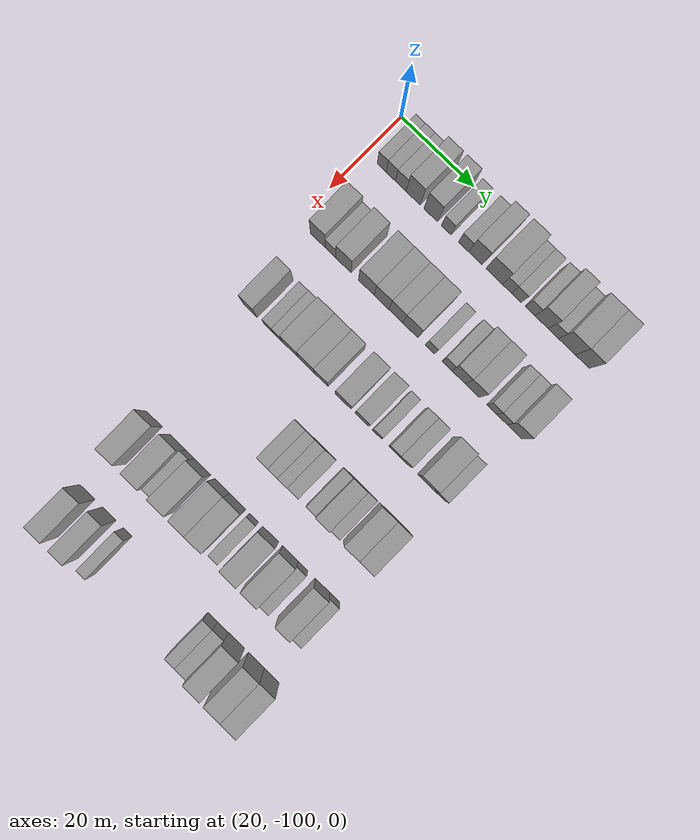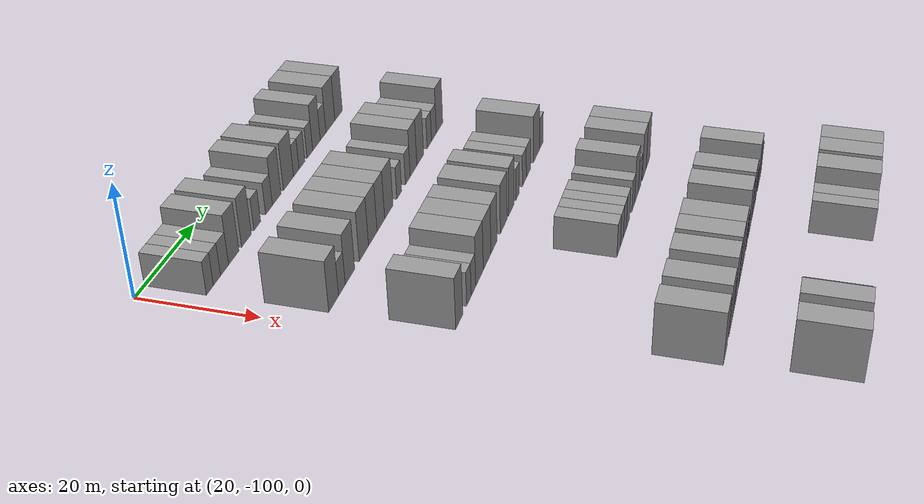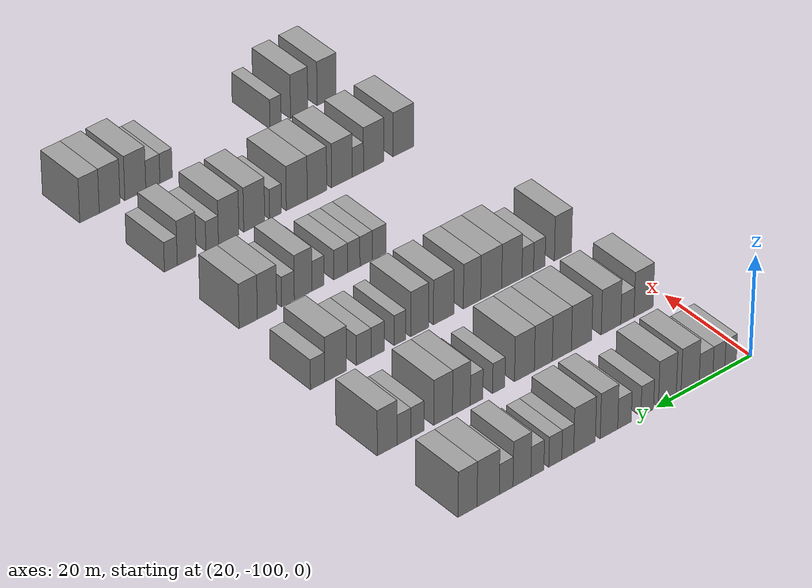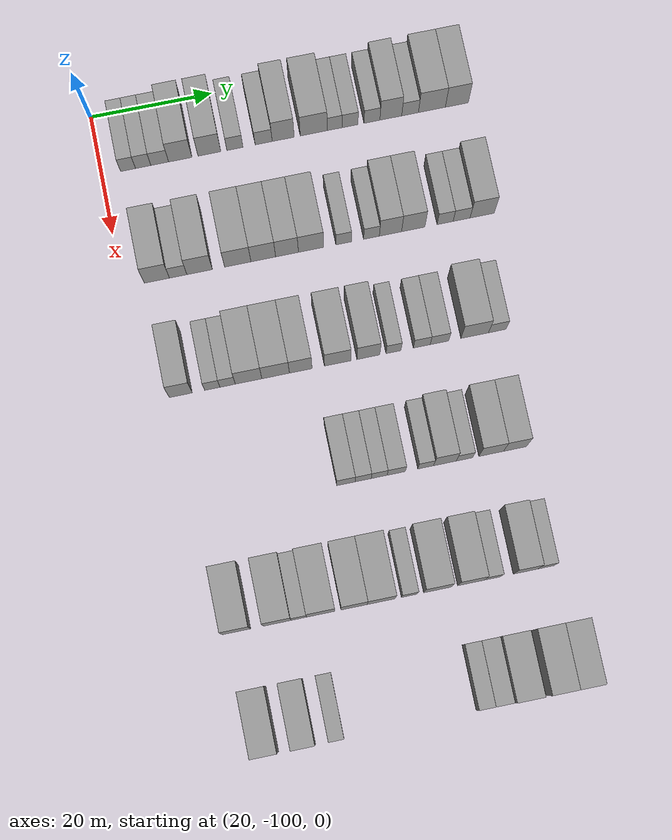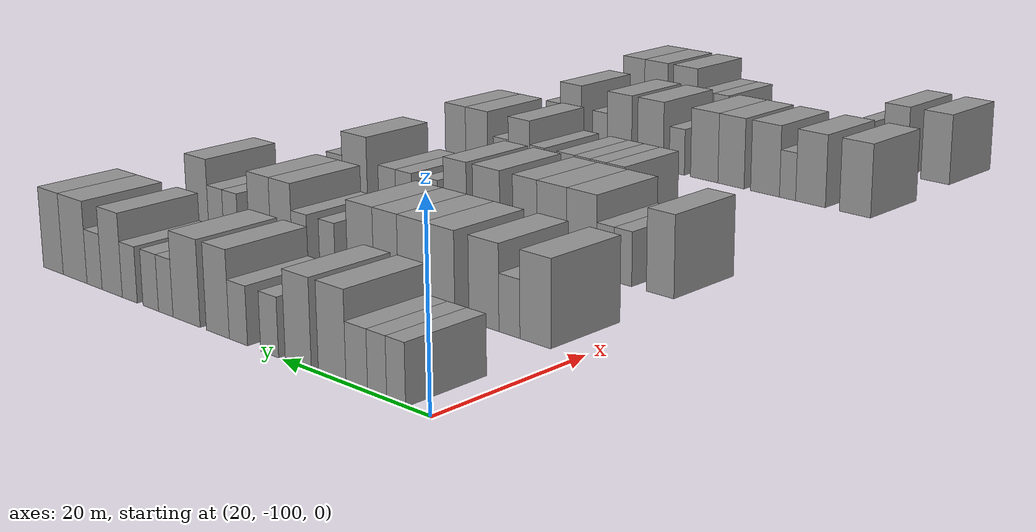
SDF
<sdf version="1.6">
 <world name="default">
  <model name="building_66">
   <static>1</static>
   <pose>25.0000 -95.6244 0 0.000000 0.000000 0.000000</pose>
   <link name="link">
    <pose>0 0 3.00 0 0 0</pose>
    <collision name="collision"><geometry><box><size>10.0000 2.4473 6.0000</size></box></geometry></collision>
    <visual name="visual">
     <cast_shadows>0</cast_shadows>
     <geometry><box><size>10.0000 2.4473 6.0000</size></box></geometry>
     <material>
      <script>
       <uri>model://grey_wall/materials/scripts</uri>
       <uri>model://grey_wall/materials/textures</uri>
       <name>vrc/grey_wall</name>
      </script>
     </material>
    </visual>
   </link>
  </model>
  <model name="building_67">
   <static>1</static>
   <pose>25.0000 -93.1399 0 0.000000 0.000000 0.000000</pose>
   <link name="link">
    <pose>0 0 3.00 0 0 0</pose>
    <collision name="collision"><geometry><box><size>10.0000 2.5217 6.0000</size></box></geometry></collision>
    <visual name="visual">
     <cast_shadows>0</cast_shadows>
     <geometry><box><size>10.0000 2.5217 6.0000</size></box></geometry>
     <material>
      <script>
       <uri>model://grey_wall/materials/scripts</uri>
       <uri>model://grey_wall/materials/textures</uri>
       <name>vrc/grey_wall</name>
      </script>
     </material>
    </visual>
   </link>
  </model>
  <model name="building_68">
   <static>1</static>
   <pose>25.0000 -90.4197 0 0.000000 0.000000 0.000000</pose>
   <link name="link">
    <pose>0 0 3.00 0 0 0</pose>
    <collision name="collision"><geometry><box><size>10.0000 2.9186 6.0000</size></box></geometry></collision>
    <visual name="visual">
     <cast_shadows>0</cast_shadows>
     <geometry><box><size>10.0000 2.9186 6.0000</size></box></geometry>
     <material>
      <script>
       <uri>model://grey_wall/materials/scripts</uri>
       <uri>model://grey_wall/materials/textures</uri>
       <name>vrc/grey_wall</name>
      </script>
     </material>
    </visual>
   </link>
  </model>
  <model name="building_69">
   <static>1</static>
   <pose>25.0000 -87.0418 0 0.000000 0.000000 0.000000</pose>
   <link name="link">
    <pose>0 0 4.50 0 0 0</pose>
    <collision name="collision"><geometry><box><size>10.0000 3.8372 9.0000</size></box></geometry></collision>
    <visual name="visual">
     <cast_shadows>0</cast_shadows>
     <geometry><box><size>10.0000 3.8372 9.0000</size></box></geometry>
     <material>
      <script>
       <uri>model://grey_wall/materials/scripts</uri>
       <uri>model://grey_wall/materials/textures</uri>
       <name>vrc/grey_wall</name>
      </script>
     </material>
    </visual>
   </link>
  </model>
  <model name="building_70">
   <static>1</static>
   <pose>25.0000 -82.2463 0 0.000000 0.000000 0.000000</pose>
   <link name="link">
    <pose>0 0 4.50 0 0 0</pose>
    <collision name="collision"><geometry><box><size>10.0000 3.7538 9.0000</size></box></geometry></collision>
    <visual name="visual">
     <cast_shadows>0</cast_shadows>
     <geometry><box><size>10.0000 3.7538 9.0000</size></box></geometry>
     <material>
      <script>
       <uri>model://grey_wall/materials/scripts</uri>
       <uri>model://grey_wall/materials/textures</uri>
       <name>vrc/grey_wall</name>
      </script>
     </material>
    </visual>
   </link>
  </model>
  <model name="building_71">
   <static>1</static>
   <pose>25.0000 -78.0394 0 0.000000 0.000000 0.000000</pose>
   <link name="link">
    <pose>0 0 3.00 0 0 0</pose>
    <collision name="collision"><geometry><box><size>10.0000 2.6600 6.0000</size></box></geometry></collision>
    <visual name="visual">
     <cast_shadows>0</cast_shadows>
     <geometry><box><size>10.0000 2.6600 6.0000</size></box></geometry>
     <material>
      <script>
       <uri>model://grey_wall/materials/scripts</uri>
       <uri>model://grey_wall/materials/textures</uri>
       <name>vrc/grey_wall</name>
      </script>
     </material>
    </visual>
   </link>
  </model>
  <model name="building_72">
   <static>1</static>
   <pose>25.0000 -73.3021 0 0.000000 0.000000 0.000000</pose>
   <link name="link">
    <pose>0 0 3.00 0 0 0</pose>
    <collision name="collision"><geometry><box><size>10.0000 2.8146 6.0000</size></box></geometry></collision>
    <visual name="visual">
     <cast_shadows>0</cast_shadows>
     <geometry><box><size>10.0000 2.8146 6.0000</size></box></geometry>
     <material>
      <script>
       <uri>model://grey_wall/materials/scripts</uri>
       <uri>model://grey_wall/materials/textures</uri>
       <name>vrc/grey_wall</name>
      </script>
     </material>
    </visual>
   </link>
  </model>
  <model name="building_73">
   <static>1</static>
   <pose>25.0000 -70.0774 0 0.000000 0.000000 0.000000</pose>
   <link name="link">
    <pose>0 0 4.50 0 0 0</pose>
    <collision name="collision"><geometry><box><size>10.0000 3.6347 9.0000</size></box></geometry></collision>
    <visual name="visual">
     <cast_shadows>0</cast_shadows>
     <geometry><box><size>10.0000 3.6347 9.0000</size></box></geometry>
     <material>
      <script>
       <uri>model://grey_wall/materials/scripts</uri>
       <uri>model://grey_wall/materials/textures</uri>
       <name>vrc/grey_wall</name>
      </script>
     </material>
    </visual>
   </link>
  </model>
  <model name="building_74">
   <static>1</static>
   <pose>25.0000 -65.0323 0 0.000000 0.000000 0.000000</pose>
   <link name="link">
    <pose>0 0 4.50 0 0 0</pose>
    <collision name="collision"><geometry><box><size>10.0000 4.4555 9.0000</size></box></geometry></collision>
    <visual name="visual">
     <cast_shadows>0</cast_shadows>
     <geometry><box><size>10.0000 4.4555 9.0000</size></box></geometry>
     <material>
      <script>
       <uri>model://grey_wall/materials/scripts</uri>
       <uri>model://grey_wall/materials/textures</uri>
       <name>vrc/grey_wall</name>
      </script>
     </material>
    </visual>
   </link>
  </model>
  <model name="building_75">
   <static>1</static>
   <pose>25.0000 -61.5827 0 0.000000 0.000000 0.000000</pose>
   <link name="link">
    <pose>0 0 3.00 0 0 0</pose>
    <collision name="collision"><geometry><box><size>10.0000 2.4436 6.0000</size></box></geometry></collision>
    <visual name="visual">
     <cast_shadows>0</cast_shadows>
     <geometry><box><size>10.0000 2.4436 6.0000</size></box></geometry>
     <material>
      <script>
       <uri>model://grey_wall/materials/scripts</uri>
       <uri>model://grey_wall/materials/textures</uri>
       <name>vrc/grey_wall</name>
      </script>
     </material>
    </visual>
   </link>
  </model>
  <model name="building_76">
   <static>1</static>
   <pose>25.0000 -59.0315 0 0.000000 0.000000 0.000000</pose>
   <link name="link">
    <pose>0 0 3.00 0 0 0</pose>
    <collision name="collision"><geometry><box><size>10.0000 2.6588 6.0000</size></box></geometry></collision>
    <visual name="visual">
     <cast_shadows>0</cast_shadows>
     <geometry><box><size>10.0000 2.6588 6.0000</size></box></geometry>
     <material>
      <script>
       <uri>model://grey_wall/materials/scripts</uri>
       <uri>model://grey_wall/materials/textures</uri>
       <name>vrc/grey_wall</name>
      </script>
     </material>
    </visual>
   </link>
  </model>
  <model name="building_77">
   <static>1</static>
   <pose>25.0000 -55.3832 0 0.000000 0.000000 0.000000</pose>
   <link name="link">
    <pose>0 0 3.00 0 0 0</pose>
    <collision name="collision"><geometry><box><size>10.0000 2.6379 6.0000</size></box></geometry></collision>
    <visual name="visual">
     <cast_shadows>0</cast_shadows>
     <geometry><box><size>10.0000 2.6379 6.0000</size></box></geometry>
     <material>
      <script>
       <uri>model://grey_wall/materials/scripts</uri>
       <uri>model://grey_wall/materials/textures</uri>
       <name>vrc/grey_wall</name>
      </script>
     </material>
    </visual>
   </link>
  </model>
  <model name="building_78">
   <static>1</static>
   <pose>25.0000 -52.2498 0 0.000000 0.000000 0.000000</pose>
   <link name="link">
    <pose>0 0 4.50 0 0 0</pose>
    <collision name="collision"><geometry><box><size>10.0000 3.6288 9.0000</size></box></geometry></collision>
    <visual name="visual">
     <cast_shadows>0</cast_shadows>
     <geometry><box><size>10.0000 3.6288 9.0000</size></box></geometry>
     <material>
      <script>
       <uri>model://grey_wall/materials/scripts</uri>
       <uri>model://grey_wall/materials/textures</uri>
       <name>vrc/grey_wall</name>
      </script>
     </material>
    </visual>
   </link>
  </model>
  <model name="building_79">
   <static>1</static>
   <pose>25.0000 -49.0519 0 0.000000 0.000000 0.000000</pose>
   <link name="link">
    <pose>0 0 3.00 0 0 0</pose>
    <collision name="collision"><geometry><box><size>10.0000 2.7669 6.0000</size></box></geometry></collision>
    <visual name="visual">
     <cast_shadows>0</cast_shadows>
     <geometry><box><size>10.0000 2.7669 6.0000</size></box></geometry>
     <material>
      <script>
       <uri>model://grey_wall/materials/scripts</uri>
       <uri>model://grey_wall/materials/textures</uri>
       <name>vrc/grey_wall</name>
      </script>
     </material>
    </visual>
   </link>
  </model>
  <model name="building_80">
   <static>1</static>
   <pose>25.0000 -45.4250 0 0.000000 0.000000 0.000000</pose>
   <link name="link">
    <pose>0 0 4.50 0 0 0</pose>
    <collision name="collision"><geometry><box><size>10.0000 4.4869 9.0000</size></box></geometry></collision>
    <visual name="visual">
     <cast_shadows>0</cast_shadows>
     <geometry><box><size>10.0000 4.4869 9.0000</size></box></geometry>
     <material>
      <script>
       <uri>model://grey_wall/materials/scripts</uri>
       <uri>model://grey_wall/materials/textures</uri>
       <name>vrc/grey_wall</name>
      </script>
     </material>
    </visual>
   </link>
  </model>
  <model name="building_81">
   <static>1</static>
   <pose>25.0000 -41.2766 0 0.000000 0.000000 0.000000</pose>
   <link name="link">
    <pose>0 0 4.50 0 0 0</pose>
    <collision name="collision"><geometry><box><size>10.0000 3.8098 9.0000</size></box></geometry></collision>
    <visual name="visual">
     <cast_shadows>0</cast_shadows>
     <geometry><box><size>10.0000 3.8098 9.0000</size></box></geometry>
     <material>
      <script>
       <uri>model://grey_wall/materials/scripts</uri>
       <uri>model://grey_wall/materials/textures</uri>
       <name>vrc/grey_wall</name>
      </script>
     </material>
    </visual>
   </link>
  </model>
  <model name="building_230">
   <static>1</static>
   <pose>44.0000 -94.4397 0 0.000000 0.000000 0.000000</pose>
   <link name="link">
    <pose>0 0 4.50 0 0 0</pose>
    <collision name="collision"><geometry><box><size>10.0000 4.0801 9.0000</size></box></geometry></collision>
    <visual name="visual">
     <cast_shadows>0</cast_shadows>
     <geometry><box><size>10.0000 4.0801 9.0000</size></box></geometry>
     <material>
      <script>
       <uri>model://grey_wall/materials/scripts</uri>
       <uri>model://grey_wall/materials/textures</uri>
       <name>vrc/grey_wall</name>
      </script>
     </material>
    </visual>
   </link>
  </model>
  <model name="building_231">
   <static>1</static>
   <pose>44.0000 -90.9858 0 0.000000 0.000000 0.000000</pose>
   <link name="link">
    <pose>0 0 3.00 0 0 0</pose>
    <collision name="collision"><geometry><box><size>10.0000 2.8278 6.0000</size></box></geometry></collision>
    <visual name="visual">
     <cast_shadows>0</cast_shadows>
     <geometry><box><size>10.0000 2.8278 6.0000</size></box></geometry>
     <material>
      <script>
       <uri>model://grey_wall/materials/scripts</uri>
       <uri>model://grey_wall/materials/textures</uri>
       <name>vrc/grey_wall</name>
      </script>
     </material>
    </visual>
   </link>
  </model>
  <model name="building_232">
   <static>1</static>
   <pose>44.0000 -87.4988 0 0.000000 0.000000 0.000000</pose>
   <link name="link">
    <pose>0 0 4.50 0 0 0</pose>
    <collision name="collision"><geometry><box><size>10.0000 4.1462 9.0000</size></box></geometry></collision>
    <visual name="visual">
     <cast_shadows>0</cast_shadows>
     <geometry><box><size>10.0000 4.1462 9.0000</size></box></geometry>
     <material>
      <script>
       <uri>model://grey_wall/materials/scripts</uri>
       <uri>model://grey_wall/materials/textures</uri>
       <name>vrc/grey_wall</name>
      </script>
     </material>
    </visual>
   </link>
  </model>
  <model name="building_233">
   <static>1</static>
   <pose>44.0000 -81.2805 0 0.000000 0.000000 0.000000</pose>
   <link name="link">
    <pose>0 0 4.50 0 0 0</pose>
    <collision name="collision"><geometry><box><size>10.0000 4.2903 9.0000</size></box></geometry></collision>
    <visual name="visual">
     <cast_shadows>0</cast_shadows>
     <geometry><box><size>10.0000 4.2903 9.0000</size></box></geometry>
     <material>
      <script>
       <uri>model://grey_wall/materials/scripts</uri>
       <uri>model://grey_wall/materials/textures</uri>
       <name>vrc/grey_wall</name>
      </script>
     </material>
    </visual>
   </link>
  </model>
  <model name="building_234">
   <static>1</static>
   <pose>44.0000 -77.1309 0 0.000000 0.000000 0.000000</pose>
   <link name="link">
    <pose>0 0 4.50 0 0 0</pose>
    <collision name="collision"><geometry><box><size>10.0000 4.0091 9.0000</size></box></geometry></collision>
    <visual name="visual">
     <cast_shadows>0</cast_shadows>
     <geometry><box><size>10.0000 4.0091 9.0000</size></box></geometry>
     <material>
      <script>
       <uri>model://grey_wall/materials/scripts</uri>
       <uri>model://grey_wall/materials/textures</uri>
       <name>vrc/grey_wall</name>
      </script>
     </material>
    </visual>
   </link>
  </model>
  <model name="building_235">
   <static>1</static>
   <pose>44.0000 -73.2643 0 0.000000 0.000000 0.000000</pose>
   <link name="link">
    <pose>0 0 4.50 0 0 0</pose>
    <collision name="collision"><geometry><box><size>10.0000 3.7241 9.0000</size></box></geometry></collision>
    <visual name="visual">
     <cast_shadows>0</cast_shadows>
     <geometry><box><size>10.0000 3.7241 9.0000</size></box></geometry>
     <material>
      <script>
       <uri>model://grey_wall/materials/scripts</uri>
       <uri>model://grey_wall/materials/textures</uri>
       <name>vrc/grey_wall</name>
      </script>
     </material>
    </visual>
   </link>
  </model>
  <model name="building_236">
   <static>1</static>
   <pose>44.0000 -69.3434 0 0.000000 0.000000 0.000000</pose>
   <link name="link">
    <pose>0 0 4.50 0 0 0</pose>
    <collision name="collision"><geometry><box><size>10.0000 4.1177 9.0000</size></box></geometry></collision>
    <visual name="visual">
     <cast_shadows>0</cast_shadows>
     <geometry><box><size>10.0000 4.1177 9.0000</size></box></geometry>
     <material>
      <script>
       <uri>model://grey_wall/materials/scripts</uri>
       <uri>model://grey_wall/materials/textures</uri>
       <name>vrc/grey_wall</name>
      </script>
     </material>
    </visual>
   </link>
  </model>
  <model name="building_237">
   <static>1</static>
   <pose>44.0000 -64.0171 0 0.000000 0.000000 0.000000</pose>
   <link name="link">
    <pose>0 0 3.00 0 0 0</pose>
    <collision name="collision"><geometry><box><size>10.0000 2.5350 6.0000</size></box></geometry></collision>
    <visual name="visual">
     <cast_shadows>0</cast_shadows>
     <geometry><box><size>10.0000 2.5350 6.0000</size></box></geometry>
     <material>
      <script>
       <uri>model://grey_wall/materials/scripts</uri>
       <uri>model://grey_wall/materials/textures</uri>
       <name>vrc/grey_wall</name>
      </script>
     </material>
    </visual>
   </link>
  </model>
  <model name="building_238">
   <static>1</static>
   <pose>44.0000 -59.4573 0 0.000000 0.000000 0.000000</pose>
   <link name="link">
    <pose>0 0 3.00 0 0 0</pose>
    <collision name="collision"><geometry><box><size>10.0000 2.5846 6.0000</size></box></geometry></collision>
    <visual name="visual">
     <cast_shadows>0</cast_shadows>
     <geometry><box><size>10.0000 2.5846 6.0000</size></box></geometry>
     <material>
      <script>
       <uri>model://grey_wall/materials/scripts</uri>
       <uri>model://grey_wall/materials/textures</uri>
       <name>vrc/grey_wall</name>
      </script>
     </material>
    </visual>
   </link>
  </model>
  <model name="building_239">
   <static>1</static>
   <pose>44.0000 -56.3441 0 0.000000 0.000000 0.000000</pose>
   <link name="link">
    <pose>0 0 4.50 0 0 0</pose>
    <collision name="collision"><geometry><box><size>10.0000 3.6419 9.0000</size></box></geometry></collision>
    <visual name="visual">
     <cast_shadows>0</cast_shadows>
     <geometry><box><size>10.0000 3.6419 9.0000</size></box></geometry>
     <material>
      <script>
       <uri>model://grey_wall/materials/scripts</uri>
       <uri>model://grey_wall/materials/textures</uri>
       <name>vrc/grey_wall</name>
      </script>
     </material>
    </visual>
   </link>
  </model>
  <model name="building_240">
   <static>1</static>
   <pose>44.0000 -52.6106 0 0.000000 0.000000 0.000000</pose>
   <link name="link">
    <pose>0 0 4.50 0 0 0</pose>
    <collision name="collision"><geometry><box><size>10.0000 3.8251 9.0000</size></box></geometry></collision>
    <visual name="visual">
     <cast_shadows>0</cast_shadows>
     <geometry><box><size>10.0000 3.8251 9.0000</size></box></geometry>
     <material>
      <script>
       <uri>model://grey_wall/materials/scripts</uri>
       <uri>model://grey_wall/materials/textures</uri>
       <name>vrc/grey_wall</name>
      </script>
     </material>
    </visual>
   </link>
  </model>
  <model name="building_241">
   <static>1</static>
   <pose>44.0000 -47.3762 0 0.000000 0.000000 0.000000</pose>
   <link name="link">
    <pose>0 0 3.00 0 0 0</pose>
    <collision name="collision"><geometry><box><size>10.0000 2.6438 6.0000</size></box></geometry></collision>
    <visual name="visual">
     <cast_shadows>0</cast_shadows>
     <geometry><box><size>10.0000 2.6438 6.0000</size></box></geometry>
     <material>
      <script>
       <uri>model://grey_wall/materials/scripts</uri>
       <uri>model://grey_wall/materials/textures</uri>
       <name>vrc/grey_wall</name>
      </script>
     </material>
    </visual>
   </link>
  </model>
  <model name="building_242">
   <static>1</static>
   <pose>44.0000 -44.6667 0 0.000000 0.000000 0.000000</pose>
   <link name="link">
    <pose>0 0 3.00 0 0 0</pose>
    <collision name="collision"><geometry><box><size>10.0000 2.7752 6.0000</size></box></geometry></collision>
    <visual name="visual">
     <cast_shadows>0</cast_shadows>
     <geometry><box><size>10.0000 2.7752 6.0000</size></box></geometry>
     <material>
      <script>
       <uri>model://grey_wall/materials/scripts</uri>
       <uri>model://grey_wall/materials/textures</uri>
       <name>vrc/grey_wall</name>
      </script>
     </material>
    </visual>
   </link>
  </model>
  <model name="building_243">
   <static>1</static>
   <pose>44.0000 -41.2909 0 0.000000 0.000000 0.000000</pose>
   <link name="link">
    <pose>0 0 4.50 0 0 0</pose>
    <collision name="collision"><geometry><box><size>10.0000 3.9764 9.0000</size></box></geometry></collision>
    <visual name="visual">
     <cast_shadows>0</cast_shadows>
     <geometry><box><size>10.0000 3.9764 9.0000</size></box></geometry>
     <material>
      <script>
       <uri>model://grey_wall/materials/scripts</uri>
       <uri>model://grey_wall/materials/textures</uri>
       <name>vrc/grey_wall</name>
      </script>
     </material>
    </visual>
   </link>
  </model>
  <model name="building_413">
   <static>1</static>
   <pose>63.0000 -94.1561 0 0.000000 0.000000 0.000000</pose>
   <link name="link">
    <pose>0 0 4.50 0 0 0</pose>
    <collision name="collision"><geometry><box><size>10.0000 3.6726 9.0000</size></box></geometry></collision>
    <visual name="visual">
     <cast_shadows>0</cast_shadows>
     <geometry><box><size>10.0000 3.6726 9.0000</size></box></geometry>
     <material>
      <script>
       <uri>model://grey_wall/materials/scripts</uri>
       <uri>model://grey_wall/materials/textures</uri>
       <name>vrc/grey_wall</name>
      </script>
     </material>
    </visual>
   </link>
  </model>
  <model name="building_414">
   <static>1</static>
   <pose>63.0000 -89.0990 0 0.000000 0.000000 0.000000</pose>
   <link name="link">
    <pose>0 0 3.00 0 0 0</pose>
    <collision name="collision"><geometry><box><size>10.0000 2.4415 6.0000</size></box></geometry></collision>
    <visual name="visual">
     <cast_shadows>0</cast_shadows>
     <geometry><box><size>10.0000 2.4415 6.0000</size></box></geometry>
     <material>
      <script>
       <uri>model://grey_wall/materials/scripts</uri>
       <uri>model://grey_wall/materials/textures</uri>
       <name>vrc/grey_wall</name>
      </script>
     </material>
    </visual>
   </link>
  </model>
  <model name="building_415">
   <static>1</static>
   <pose>63.0000 -86.6405 0 0.000000 0.000000 0.000000</pose>
   <link name="link">
    <pose>0 0 3.00 0 0 0</pose>
    <collision name="collision"><geometry><box><size>10.0000 2.4756 6.0000</size></box></geometry></collision>
    <visual name="visual">
     <cast_shadows>0</cast_shadows>
     <geometry><box><size>10.0000 2.4756 6.0000</size></box></geometry>
     <material>
      <script>
       <uri>model://grey_wall/materials/scripts</uri>
       <uri>model://grey_wall/materials/textures</uri>
       <name>vrc/grey_wall</name>
      </script>
     </material>
    </visual>
   </link>
  </model>
  <model name="building_416">
   <static>1</static>
   <pose>63.0000 -83.2626 0 0.000000 0.000000 0.000000</pose>
   <link name="link">
    <pose>0 0 4.50 0 0 0</pose>
    <collision name="collision"><geometry><box><size>10.0000 4.2802 9.0000</size></box></geometry></collision>
    <visual name="visual">
     <cast_shadows>0</cast_shadows>
     <geometry><box><size>10.0000 4.2802 9.0000</size></box></geometry>
     <material>
      <script>
       <uri>model://grey_wall/materials/scripts</uri>
       <uri>model://grey_wall/materials/textures</uri>
       <name>vrc/grey_wall</name>
      </script>
     </material>
    </visual>
   </link>
  </model>
  <model name="building_417">
   <static>1</static>
   <pose>63.0000 -78.9058 0 0.000000 0.000000 0.000000</pose>
   <link name="link">
    <pose>0 0 4.50 0 0 0</pose>
    <collision name="collision"><geometry><box><size>10.0000 4.4334 9.0000</size></box></geometry></collision>
    <visual name="visual">
     <cast_shadows>0</cast_shadows>
     <geometry><box><size>10.0000 4.4334 9.0000</size></box></geometry>
     <material>
      <script>
       <uri>model://grey_wall/materials/scripts</uri>
       <uri>model://grey_wall/materials/textures</uri>
       <name>vrc/grey_wall</name>
      </script>
     </material>
    </visual>
   </link>
  </model>
  <model name="building_418">
   <static>1</static>
   <pose>63.0000 -74.8684 0 0.000000 0.000000 0.000000</pose>
   <link name="link">
    <pose>0 0 4.50 0 0 0</pose>
    <collision name="collision"><geometry><box><size>10.0000 3.6415 9.0000</size></box></geometry></collision>
    <visual name="visual">
     <cast_shadows>0</cast_shadows>
     <geometry><box><size>10.0000 3.6415 9.0000</size></box></geometry>
     <material>
      <script>
       <uri>model://grey_wall/materials/scripts</uri>
       <uri>model://grey_wall/materials/textures</uri>
       <name>vrc/grey_wall</name>
      </script>
     </material>
    </visual>
   </link>
  </model>
  <model name="building_419">
   <static>1</static>
   <pose>63.0000 -68.9253 0 0.000000 0.000000 0.000000</pose>
   <link name="link">
    <pose>0 0 4.50 0 0 0</pose>
    <collision name="collision"><geometry><box><size>10.0000 4.2446 9.0000</size></box></geometry></collision>
    <visual name="visual">
     <cast_shadows>0</cast_shadows>
     <geometry><box><size>10.0000 4.2446 9.0000</size></box></geometry>
     <material>
      <script>
       <uri>model://grey_wall/materials/scripts</uri>
       <uri>model://grey_wall/materials/textures</uri>
       <name>vrc/grey_wall</name>
      </script>
     </material>
    </visual>
   </link>
  </model>
  <model name="building_420">
   <static>1</static>
   <pose>63.0000 -63.9522 0 0.000000 0.000000 0.000000</pose>
   <link name="link">
    <pose>0 0 4.50 0 0 0</pose>
    <collision name="collision"><geometry><box><size>10.0000 3.7017 9.0000</size></box></geometry></collision>
    <visual name="visual">
     <cast_shadows>0</cast_shadows>
     <geometry><box><size>10.0000 3.7017 9.0000</size></box></geometry>
     <material>
      <script>
       <uri>model://grey_wall/materials/scripts</uri>
       <uri>model://grey_wall/materials/textures</uri>
       <name>vrc/grey_wall</name>
      </script>
     </material>
    </visual>
   </link>
  </model>
  <model name="building_421">
   <static>1</static>
   <pose>63.0000 -59.8925 0 0.000000 0.000000 0.000000</pose>
   <link name="link">
    <pose>0 0 3.00 0 0 0</pose>
    <collision name="collision"><geometry><box><size>10.0000 2.4177 6.0000</size></box></geometry></collision>
    <visual name="visual">
     <cast_shadows>0</cast_shadows>
     <geometry><box><size>10.0000 2.4177 6.0000</size></box></geometry>
     <material>
      <script>
       <uri>model://grey_wall/materials/scripts</uri>
       <uri>model://grey_wall/materials/textures</uri>
       <name>vrc/grey_wall</name>
      </script>
     </material>
    </visual>
   </link>
  </model>
  <model name="building_422">
   <static>1</static>
   <pose>63.0000 -55.3165 0 0.000000 0.000000 0.000000</pose>
   <link name="link">
    <pose>0 0 3.00 0 0 0</pose>
    <collision name="collision"><geometry><box><size>10.0000 2.7343 6.0000</size></box></geometry></collision>
    <visual name="visual">
     <cast_shadows>0</cast_shadows>
     <geometry><box><size>10.0000 2.7343 6.0000</size></box></geometry>
     <material>
      <script>
       <uri>model://grey_wall/materials/scripts</uri>
       <uri>model://grey_wall/materials/textures</uri>
       <name>vrc/grey_wall</name>
      </script>
     </material>
    </visual>
   </link>
  </model>
  <model name="building_423">
   <static>1</static>
   <pose>63.0000 -52.4522 0 0.000000 0.000000 0.000000</pose>
   <link name="link">
    <pose>0 0 3.00 0 0 0</pose>
    <collision name="collision"><geometry><box><size>10.0000 2.9945 6.0000</size></box></geometry></collision>
    <visual name="visual">
     <cast_shadows>0</cast_shadows>
     <geometry><box><size>10.0000 2.9945 6.0000</size></box></geometry>
     <material>
      <script>
       <uri>model://grey_wall/materials/scripts</uri>
       <uri>model://grey_wall/materials/textures</uri>
       <name>vrc/grey_wall</name>
      </script>
     </material>
    </visual>
   </link>
  </model>
  <model name="building_424">
   <static>1</static>
   <pose>63.0000 -46.7178 0 0.000000 0.000000 0.000000</pose>
   <link name="link">
    <pose>0 0 4.50 0 0 0</pose>
    <collision name="collision"><geometry><box><size>10.0000 4.4743 9.0000</size></box></geometry></collision>
    <visual name="visual">
     <cast_shadows>0</cast_shadows>
     <geometry><box><size>10.0000 4.4743 9.0000</size></box></geometry>
     <material>
      <script>
       <uri>model://grey_wall/materials/scripts</uri>
       <uri>model://grey_wall/materials/textures</uri>
       <name>vrc/grey_wall</name>
      </script>
     </material>
    </visual>
   </link>
  </model>
  <model name="building_425">
   <static>1</static>
   <pose>63.0000 -43.0467 0 0.000000 0.000000 0.000000</pose>
   <link name="link">
    <pose>0 0 3.00 0 0 0</pose>
    <collision name="collision"><geometry><box><size>10.0000 2.8677 6.0000</size></box></geometry></collision>
    <visual name="visual">
     <cast_shadows>0</cast_shadows>
     <geometry><box><size>10.0000 2.8677 6.0000</size></box></geometry>
     <material>
      <script>
       <uri>model://grey_wall/materials/scripts</uri>
       <uri>model://grey_wall/materials/textures</uri>
       <name>vrc/grey_wall</name>
      </script>
     </material>
    </visual>
   </link>
  </model>
  <model name="building_573">
   <static>1</static>
   <pose>82.0000 -71.5166 0 0.000000 0.000000 0.000000</pose>
   <link name="link">
    <pose>0 0 3.00 0 0 0</pose>
    <collision name="collision"><geometry><box><size>10.0000 2.9342 6.0000</size></box></geometry></collision>
    <visual name="visual">
     <cast_shadows>0</cast_shadows>
     <geometry><box><size>10.0000 2.9342 6.0000</size></box></geometry>
     <material>
      <script>
       <uri>model://grey_wall/materials/scripts</uri>
       <uri>model://grey_wall/materials/textures</uri>
       <name>vrc/grey_wall</name>
      </script>
     </material>
    </visual>
   </link>
  </model>
  <model name="building_574">
   <static>1</static>
   <pose>82.0000 -68.7672 0 0.000000 0.000000 0.000000</pose>
   <link name="link">
    <pose>0 0 3.00 0 0 0</pose>
    <collision name="collision"><geometry><box><size>10.0000 2.5647 6.0000</size></box></geometry></collision>
    <visual name="visual">
     <cast_shadows>0</cast_shadows>
     <geometry><box><size>10.0000 2.5647 6.0000</size></box></geometry>
     <material>
      <script>
       <uri>model://grey_wall/materials/scripts</uri>
       <uri>model://grey_wall/materials/textures</uri>
       <name>vrc/grey_wall</name>
      </script>
     </material>
    </visual>
   </link>
  </model>
  <model name="building_575">
   <static>1</static>
   <pose>82.0000 -66.2163 0 0.000000 0.000000 0.000000</pose>
   <link name="link">
    <pose>0 0 3.00 0 0 0</pose>
    <collision name="collision"><geometry><box><size>10.0000 2.5372 6.0000</size></box></geometry></collision>
    <visual name="visual">
     <cast_shadows>0</cast_shadows>
     <geometry><box><size>10.0000 2.5372 6.0000</size></box></geometry>
     <material>
      <script>
       <uri>model://grey_wall/materials/scripts</uri>
       <uri>model://grey_wall/materials/textures</uri>
       <name>vrc/grey_wall</name>
      </script>
     </material>
    </visual>
   </link>
  </model>
  <model name="building_576">
   <static>1</static>
   <pose>82.0000 -63.4958 0 0.000000 0.000000 0.000000</pose>
   <link name="link">
    <pose>0 0 3.00 0 0 0</pose>
    <collision name="collision"><geometry><box><size>10.0000 2.9037 6.0000</size></box></geometry></collision>
    <visual name="visual">
     <cast_shadows>0</cast_shadows>
     <geometry><box><size>10.0000 2.9037 6.0000</size></box></geometry>
     <material>
      <script>
       <uri>model://grey_wall/materials/scripts</uri>
       <uri>model://grey_wall/materials/textures</uri>
       <name>vrc/grey_wall</name>
      </script>
     </material>
    </visual>
   </link>
  </model>
  <model name="building_577">
   <static>1</static>
   <pose>82.0000 -58.7861 0 0.000000 0.000000 0.000000</pose>
   <link name="link">
    <pose>0 0 3.00 0 0 0</pose>
    <collision name="collision"><geometry><box><size>10.0000 2.5158 6.0000</size></box></geometry></collision>
    <visual name="visual">
     <cast_shadows>0</cast_shadows>
     <geometry><box><size>10.0000 2.5158 6.0000</size></box></geometry>
     <material>
      <script>
       <uri>model://grey_wall/materials/scripts</uri>
       <uri>model://grey_wall/materials/textures</uri>
       <name>vrc/grey_wall</name>
      </script>
     </material>
    </visual>
   </link>
  </model>
  <model name="building_578">
   <static>1</static>
   <pose>82.0000 -55.7071 0 0.000000 0.000000 0.000000</pose>
   <link name="link">
    <pose>0 0 4.50 0 0 0</pose>
    <collision name="collision"><geometry><box><size>10.0000 3.6423 9.0000</size></box></geometry></collision>
    <visual name="visual">
     <cast_shadows>0</cast_shadows>
     <geometry><box><size>10.0000 3.6423 9.0000</size></box></geometry>
     <material>
      <script>
       <uri>model://grey_wall/materials/scripts</uri>
       <uri>model://grey_wall/materials/textures</uri>
       <name>vrc/grey_wall</name>
      </script>
     </material>
    </visual>
   </link>
  </model>
  <model name="building_579">
   <static>1</static>
   <pose>82.0000 -52.5766 0 0.000000 0.000000 0.000000</pose>
   <link name="link">
    <pose>0 0 3.00 0 0 0</pose>
    <collision name="collision"><geometry><box><size>10.0000 2.6185 6.0000</size></box></geometry></collision>
    <visual name="visual">
     <cast_shadows>0</cast_shadows>
     <geometry><box><size>10.0000 2.6185 6.0000</size></box></geometry>
     <material>
      <script>
       <uri>model://grey_wall/materials/scripts</uri>
       <uri>model://grey_wall/materials/textures</uri>
       <name>vrc/grey_wall</name>
      </script>
     </material>
    </visual>
   </link>
  </model>
  <model name="building_580">
   <static>1</static>
   <pose>82.0000 -48.2945 0 0.000000 0.000000 0.000000</pose>
   <link name="link">
    <pose>0 0 4.50 0 0 0</pose>
    <collision name="collision"><geometry><box><size>10.0000 3.9458 9.0000</size></box></geometry></collision>
    <visual name="visual">
     <cast_shadows>0</cast_shadows>
     <geometry><box><size>10.0000 3.9458 9.0000</size></box></geometry>
     <material>
      <script>
       <uri>model://grey_wall/materials/scripts</uri>
       <uri>model://grey_wall/materials/textures</uri>
       <name>vrc/grey_wall</name>
      </script>
     </material>
    </visual>
   </link>
  </model>
  <model name="building_581">
   <static>1</static>
   <pose>82.0000 -44.4660 0 0.000000 0.000000 0.000000</pose>
   <link name="link">
    <pose>0 0 4.50 0 0 0</pose>
    <collision name="collision"><geometry><box><size>10.0000 3.7112 9.0000</size></box></geometry></collision>
    <visual name="visual">
     <cast_shadows>0</cast_shadows>
     <geometry><box><size>10.0000 3.7112 9.0000</size></box></geometry>
     <material>
      <script>
       <uri>model://grey_wall/materials/scripts</uri>
       <uri>model://grey_wall/materials/textures</uri>
       <name>vrc/grey_wall</name>
      </script>
     </material>
    </visual>
   </link>
  </model>
  <model name="building_725">
   <static>1</static>
   <pose>101.0000 -92.6124 0 0.000000 0.000000 0.000000</pose>
   <link name="link">
    <pose>0 0 4.50 0 0 0</pose>
    <collision name="collision"><geometry><box><size>10.0000 4.3998 9.0000</size></box></geometry></collision>
    <visual name="visual">
     <cast_shadows>0</cast_shadows>
     <geometry><box><size>10.0000 4.3998 9.0000</size></box></geometry>
     <material>
      <script>
       <uri>model://grey_wall/materials/scripts</uri>
       <uri>model://grey_wall/materials/textures</uri>
       <name>vrc/grey_wall</name>
      </script>
     </material>
    </visual>
   </link>
  </model>
  <model name="building_726">
   <static>1</static>
   <pose>101.0000 -86.2340 0 0.000000 0.000000 0.000000</pose>
   <link name="link">
    <pose>0 0 4.50 0 0 0</pose>
    <collision name="collision"><geometry><box><size>10.0000 4.3569 9.0000</size></box></geometry></collision>
    <visual name="visual">
     <cast_shadows>0</cast_shadows>
     <geometry><box><size>10.0000 4.3569 9.0000</size></box></geometry>
     <material>
      <script>
       <uri>model://grey_wall/materials/scripts</uri>
       <uri>model://grey_wall/materials/textures</uri>
       <name>vrc/grey_wall</name>
      </script>
     </material>
    </visual>
   </link>
  </model>
  <model name="building_727">
   <static>1</static>
   <pose>101.0000 -82.8504 0 0.000000 0.000000 0.000000</pose>
   <link name="link">
    <pose>0 0 3.00 0 0 0</pose>
    <collision name="collision"><geometry><box><size>10.0000 2.4102 6.0000</size></box></geometry></collision>
    <visual name="visual">
     <cast_shadows>0</cast_shadows>
     <geometry><box><size>10.0000 2.4102 6.0000</size></box></geometry>
     <material>
      <script>
       <uri>model://grey_wall/materials/scripts</uri>
       <uri>model://grey_wall/materials/textures</uri>
       <name>vrc/grey_wall</name>
      </script>
     </material>
    </visual>
   </link>
  </model>
  <model name="building_728">
   <static>1</static>
   <pose>101.0000 -79.4442 0 0.000000 0.000000 0.000000</pose>
   <link name="link">
    <pose>0 0 4.50 0 0 0</pose>
    <collision name="collision"><geometry><box><size>10.0000 4.4023 9.0000</size></box></geometry></collision>
    <visual name="visual">
     <cast_shadows>0</cast_shadows>
     <geometry><box><size>10.0000 4.4023 9.0000</size></box></geometry>
     <material>
      <script>
       <uri>model://grey_wall/materials/scripts</uri>
       <uri>model://grey_wall/materials/textures</uri>
       <name>vrc/grey_wall</name>
      </script>
     </material>
    </visual>
   </link>
  </model>
  <model name="building_729">
   <static>1</static>
   <pose>101.0000 -74.1869 0 0.000000 0.000000 0.000000</pose>
   <link name="link">
    <pose>0 0 4.50 0 0 0</pose>
    <collision name="collision"><geometry><box><size>10.0000 4.1122 9.0000</size></box></geometry></collision>
    <visual name="visual">
     <cast_shadows>0</cast_shadows>
     <geometry><box><size>10.0000 4.1122 9.0000</size></box></geometry>
     <material>
      <script>
       <uri>model://grey_wall/materials/scripts</uri>
       <uri>model://grey_wall/materials/textures</uri>
       <name>vrc/grey_wall</name>
      </script>
     </material>
    </visual>
   </link>
  </model>
  <model name="building_730">
   <static>1</static>
   <pose>101.0000 -69.9293 0 0.000000 0.000000 0.000000</pose>
   <link name="link">
    <pose>0 0 4.50 0 0 0</pose>
    <collision name="collision"><geometry><box><size>10.0000 4.4031 9.0000</size></box></geometry></collision>
    <visual name="visual">
     <cast_shadows>0</cast_shadows>
     <geometry><box><size>10.0000 4.4031 9.0000</size></box></geometry>
     <material>
      <script>
       <uri>model://grey_wall/materials/scripts</uri>
       <uri>model://grey_wall/materials/textures</uri>
       <name>vrc/grey_wall</name>
      </script>
     </material>
    </visual>
   </link>
  </model>
  <model name="building_731">
   <static>1</static>
   <pose>101.0000 -65.4733 0 0.000000 0.000000 0.000000</pose>
   <link name="link">
    <pose>0 0 3.00 0 0 0</pose>
    <collision name="collision"><geometry><box><size>10.0000 2.5089 6.0000</size></box></geometry></collision>
    <visual name="visual">
     <cast_shadows>0</cast_shadows>
     <geometry><box><size>10.0000 2.5089 6.0000</size></box></geometry>
     <material>
      <script>
       <uri>model://grey_wall/materials/scripts</uri>
       <uri>model://grey_wall/materials/textures</uri>
       <name>vrc/grey_wall</name>
      </script>
     </material>
    </visual>
   </link>
  </model>
  <model name="building_732">
   <static>1</static>
   <pose>101.0000 -61.0356 0 0.000000 0.000000 0.000000</pose>
   <link name="link">
    <pose>0 0 4.50 0 0 0</pose>
    <collision name="collision"><geometry><box><size>10.0000 4.3665 9.0000</size></box></geometry></collision>
    <visual name="visual">
     <cast_shadows>0</cast_shadows>
     <geometry><box><size>10.0000 4.3665 9.0000</size></box></geometry>
     <material>
      <script>
       <uri>model://grey_wall/materials/scripts</uri>
       <uri>model://grey_wall/materials/textures</uri>
       <name>vrc/grey_wall</name>
      </script>
     </material>
    </visual>
   </link>
  </model>
  <model name="building_733">
   <static>1</static>
   <pose>101.0000 -55.7341 0 0.000000 0.000000 0.000000</pose>
   <link name="link">
    <pose>0 0 4.50 0 0 0</pose>
    <collision name="collision"><geometry><box><size>10.0000 4.2363 9.0000</size></box></geometry></collision>
    <visual name="visual">
     <cast_shadows>0</cast_shadows>
     <geometry><box><size>10.0000 4.2363 9.0000</size></box></geometry>
     <material>
      <script>
       <uri>model://grey_wall/materials/scripts</uri>
       <uri>model://grey_wall/materials/textures</uri>
       <name>vrc/grey_wall</name>
      </script>
     </material>
    </visual>
   </link>
  </model>
  <model name="building_734">
   <static>1</static>
   <pose>101.0000 -52.3248 0 0.000000 0.000000 0.000000</pose>
   <link name="link">
    <pose>0 0 3.00 0 0 0</pose>
    <collision name="collision"><geometry><box><size>10.0000 2.5824 6.0000</size></box></geometry></collision>
    <visual name="visual">
     <cast_shadows>0</cast_shadows>
     <geometry><box><size>10.0000 2.5824 6.0000</size></box></geometry>
     <material>
      <script>
       <uri>model://grey_wall/materials/scripts</uri>
       <uri>model://grey_wall/materials/textures</uri>
       <name>vrc/grey_wall</name>
      </script>
     </material>
    </visual>
   </link>
  </model>
  <model name="building_735">
   <static>1</static>
   <pose>101.0000 -47.1033 0 0.000000 0.000000 0.000000</pose>
   <link name="link">
    <pose>0 0 4.50 0 0 0</pose>
    <collision name="collision"><geometry><box><size>10.0000 3.8606 9.0000</size></box></geometry></collision>
    <visual name="visual">
     <cast_shadows>0</cast_shadows>
     <geometry><box><size>10.0000 3.8606 9.0000</size></box></geometry>
     <material>
      <script>
       <uri>model://grey_wall/materials/scripts</uri>
       <uri>model://grey_wall/materials/textures</uri>
       <name>vrc/grey_wall</name>
      </script>
     </material>
    </visual>
   </link>
  </model>
  <model name="building_736">
   <static>1</static>
   <pose>101.0000 -43.8539 0 0.000000 0.000000 0.000000</pose>
   <link name="link">
    <pose>0 0 3.00 0 0 0</pose>
    <collision name="collision"><geometry><box><size>10.0000 2.6380 6.0000</size></box></geometry></collision>
    <visual name="visual">
     <cast_shadows>0</cast_shadows>
     <geometry><box><size>10.0000 2.6380 6.0000</size></box></geometry>
     <material>
      <script>
       <uri>model://grey_wall/materials/scripts</uri>
       <uri>model://grey_wall/materials/textures</uri>
       <name>vrc/grey_wall</name>
      </script>
     </material>
    </visual>
   </link>
  </model>
  <model name="building_903">
   <static>1</static>
   <pose>120.0000 -91.9047 0 0.000000 0.000000 0.000000</pose>
   <link name="link">
    <pose>0 0 4.50 0 0 0</pose>
    <collision name="collision"><geometry><box><size>10.0000 4.1578 9.0000</size></box></geometry></collision>
    <visual name="visual">
     <cast_shadows>0</cast_shadows>
     <geometry><box><size>10.0000 4.1578 9.0000</size></box></geometry>
     <material>
      <script>
       <uri>model://grey_wall/materials/scripts</uri>
       <uri>model://grey_wall/materials/textures</uri>
       <name>vrc/grey_wall</name>
      </script>
     </material>
    </visual>
   </link>
  </model>
  <model name="building_904">
   <static>1</static>
   <pose>120.0000 -85.9694 0 0.000000 0.000000 0.000000</pose>
   <link name="link">
    <pose>0 0 4.50 0 0 0</pose>
    <collision name="collision"><geometry><box><size>10.0000 3.7129 9.0000</size></box></geometry></collision>
    <visual name="visual">
     <cast_shadows>0</cast_shadows>
     <geometry><box><size>10.0000 3.7129 9.0000</size></box></geometry>
     <material>
      <script>
       <uri>model://grey_wall/materials/scripts</uri>
       <uri>model://grey_wall/materials/textures</uri>
       <name>vrc/grey_wall</name>
      </script>
     </material>
    </visual>
   </link>
  </model>
  <model name="building_905">
   <static>1</static>
   <pose>120.0000 -80.9100 0 0.000000 0.000000 0.000000</pose>
   <link name="link">
    <pose>0 0 3.00 0 0 0</pose>
    <collision name="collision"><geometry><box><size>10.0000 2.4059 6.0000</size></box></geometry></collision>
    <visual name="visual">
     <cast_shadows>0</cast_shadows>
     <geometry><box><size>10.0000 2.4059 6.0000</size></box></geometry>
     <material>
      <script>
       <uri>model://grey_wall/materials/scripts</uri>
       <uri>model://grey_wall/materials/textures</uri>
       <name>vrc/grey_wall</name>
      </script>
     </material>
    </visual>
   </link>
  </model>
  <model name="building_906">
   <static>1</static>
   <pose>120.0000 -57.8287 0 0.000000 0.000000 0.000000</pose>
   <link name="link">
    <pose>0 0 3.00 0 0 0</pose>
    <collision name="collision"><geometry><box><size>10.0000 2.5855 6.0000</size></box></geometry></collision>
    <visual name="visual">
     <cast_shadows>0</cast_shadows>
     <geometry><box><size>10.0000 2.5855 6.0000</size></box></geometry>
     <material>
      <script>
       <uri>model://grey_wall/materials/scripts</uri>
       <uri>model://grey_wall/materials/textures</uri>
       <name>vrc/grey_wall</name>
      </script>
     </material>
    </visual>
   </link>
  </model>
  <model name="building_907">
   <static>1</static>
   <pose>120.0000 -55.0797 0 0.000000 0.000000 0.000000</pose>
   <link name="link">
    <pose>0 0 3.00 0 0 0</pose>
    <collision name="collision"><geometry><box><size>10.0000 2.9123 6.0000</size></box></geometry></collision>
    <visual name="visual">
     <cast_shadows>0</cast_shadows>
     <geometry><box><size>10.0000 2.9123 6.0000</size></box></geometry>
     <material>
      <script>
       <uri>model://grey_wall/materials/scripts</uri>
       <uri>model://grey_wall/materials/textures</uri>
       <name>vrc/grey_wall</name>
      </script>
     </material>
    </visual>
   </link>
  </model>
  <model name="building_908">
   <static>1</static>
   <pose>120.0000 -51.4548 0 0.000000 0.000000 0.000000</pose>
   <link name="link">
    <pose>0 0 4.50 0 0 0</pose>
    <collision name="collision"><geometry><box><size>10.0000 4.3374 9.0000</size></box></geometry></collision>
    <visual name="visual">
     <cast_shadows>0</cast_shadows>
     <geometry><box><size>10.0000 4.3374 9.0000</size></box></geometry>
     <material>
      <script>
       <uri>model://grey_wall/materials/scripts</uri>
       <uri>model://grey_wall/materials/textures</uri>
       <name>vrc/grey_wall</name>
      </script>
     </material>
    </visual>
   </link>
  </model>
  <model name="building_909">
   <static>1</static>
   <pose>120.0000 -46.1550 0 0.000000 0.000000 0.000000</pose>
   <link name="link">
    <pose>0 0 4.50 0 0 0</pose>
    <collision name="collision"><geometry><box><size>10.0000 4.2622 9.0000</size></box></geometry></collision>
    <visual name="visual">
     <cast_shadows>0</cast_shadows>
     <geometry><box><size>10.0000 4.2622 9.0000</size></box></geometry>
     <material>
      <script>
       <uri>model://grey_wall/materials/scripts</uri>
       <uri>model://grey_wall/materials/textures</uri>
       <name>vrc/grey_wall</name>
      </script>
     </material>
    </visual>
   </link>
  </model>
  <model name="building_910">
   <static>1</static>
   <pose>120.0000 -42.0289 0 0.000000 0.000000 0.000000</pose>
   <link name="link">
    <pose>0 0 4.50 0 0 0</pose>
    <collision name="collision"><geometry><box><size>10.0000 3.9901 9.0000</size></box></geometry></collision>
    <visual name="visual">
     <cast_shadows>0</cast_shadows>
     <geometry><box><size>10.0000 3.9901 9.0000</size></box></geometry>
     <material>
      <script>
       <uri>model://grey_wall/materials/scripts</uri>
       <uri>model://grey_wall/materials/textures</uri>
       <name>vrc/grey_wall</name>
      </script>
     </material>
    </visual>
   </link>
  </model>
 </world>
</sdf>
